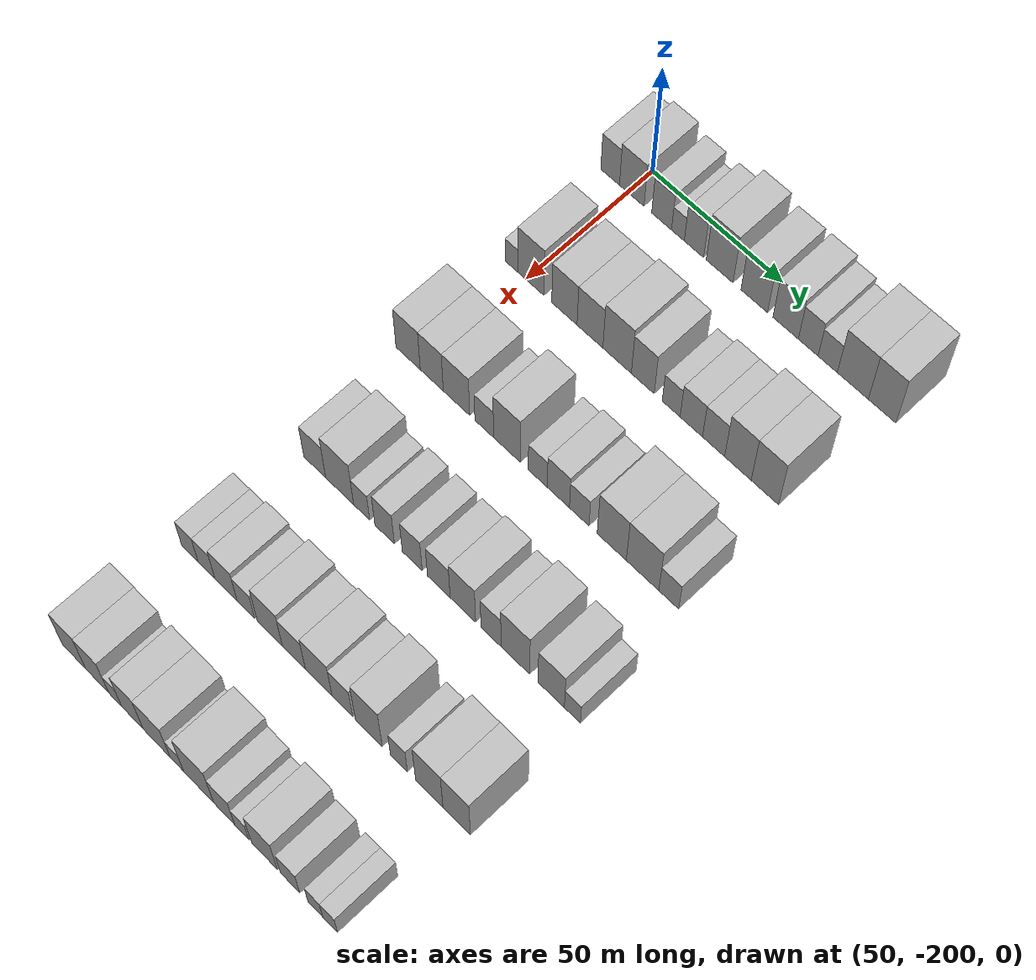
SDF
<sdf version="1.6">
 <world name="default">
  <model name="building_41">
   <static>1</static>
   <pose>50.0000 -207.1523 0 0.000000 0.000000 0.000000</pose>
   <link name="link">
    <pose>0 0 9.00 0 0 0</pose>
    <collision name="collision"><geometry><box><size>20.0000 7.3665 18.0000</size></box></geometry></collision>
    <visual name="visual">
     <cast_shadows>0</cast_shadows>
     <geometry><box><size>20.0000 7.3665 18.0000</size></box></geometry>
     <material>
      <script>
       <uri>model://HANNAS_wall/materials/scripts</uri>
       <uri>model://HANNAS_wall/materials/textures</uri>
       <name>vrc/HANNAS_wall</name>
      </script>
     </material>
    </visual>
   </link>
  </model>
  <model name="building_42">
   <static>1</static>
   <pose>50.0000 -198.6440 0 0.000000 0.000000 0.000000</pose>
   <link name="link">
    <pose>0 0 10.50 0 0 0</pose>
    <collision name="collision"><geometry><box><size>20.0000 9.6501 21.0000</size></box></geometry></collision>
    <visual name="visual">
     <cast_shadows>0</cast_shadows>
     <geometry><box><size>20.0000 9.6501 21.0000</size></box></geometry>
     <material>
      <script>
       <uri>model://HANNAS_wall/materials/scripts</uri>
       <uri>model://HANNAS_wall/materials/textures</uri>
       <name>vrc/HANNAS_wall</name>
      </script>
     </material>
    </visual>
   </link>
  </model>
  <model name="building_43">
   <static>1</static>
   <pose>50.0000 -186.9753 0 0.000000 0.000000 0.000000</pose>
   <link name="link">
    <pose>0 0 9.00 0 0 0</pose>
    <collision name="collision"><geometry><box><size>20.0000 7.6873 18.0000</size></box></geometry></collision>
    <visual name="visual">
     <cast_shadows>0</cast_shadows>
     <geometry><box><size>20.0000 7.6873 18.0000</size></box></geometry>
     <material>
      <script>
       <uri>model://HANNAS_wall/materials/scripts</uri>
       <uri>model://HANNAS_wall/materials/textures</uri>
       <name>vrc/HANNAS_wall</name>
      </script>
     </material>
    </visual>
   </link>
  </model>
  <model name="building_44">
   <static>1</static>
   <pose>50.0000 -180.6573 0 0.000000 0.000000 0.000000</pose>
   <link name="link">
    <pose>0 0 6.00 0 0 0</pose>
    <collision name="collision"><geometry><box><size>20.0000 4.9486 12.0000</size></box></geometry></collision>
    <visual name="visual">
     <cast_shadows>0</cast_shadows>
     <geometry><box><size>20.0000 4.9486 12.0000</size></box></geometry>
     <material>
      <script>
       <uri>model://HANNAS_wall/materials/scripts</uri>
       <uri>model://HANNAS_wall/materials/textures</uri>
       <name>vrc/HANNAS_wall</name>
      </script>
     </material>
    </visual>
   </link>
  </model>
  <model name="building_45">
   <static>1</static>
   <pose>50.0000 -174.4760 0 0.000000 0.000000 0.000000</pose>
   <link name="link">
    <pose>0 0 9.00 0 0 0</pose>
    <collision name="collision"><geometry><box><size>20.0000 7.4140 18.0000</size></box></geometry></collision>
    <visual name="visual">
     <cast_shadows>0</cast_shadows>
     <geometry><box><size>20.0000 7.4140 18.0000</size></box></geometry>
     <material>
      <script>
       <uri>model://HANNAS_wall/materials/scripts</uri>
       <uri>model://HANNAS_wall/materials/textures</uri>
       <name>vrc/HANNAS_wall</name>
      </script>
     </material>
    </visual>
   </link>
  </model>
  <model name="building_46">
   <static>1</static>
   <pose>50.0000 -164.6649 0 0.000000 0.000000 0.000000</pose>
   <link name="link">
    <pose>0 0 12.00 0 0 0</pose>
    <collision name="collision"><geometry><box><size>20.0000 10.2083 24.0000</size></box></geometry></collision>
    <visual name="visual">
     <cast_shadows>0</cast_shadows>
     <geometry><box><size>20.0000 10.2083 24.0000</size></box></geometry>
     <material>
      <script>
       <uri>model://HANNAS_wall/materials/scripts</uri>
       <uri>model://HANNAS_wall/materials/textures</uri>
       <name>vrc/HANNAS_wall</name>
      </script>
     </material>
    </visual>
   </link>
  </model>
  <model name="building_47">
   <static>1</static>
   <pose>50.0000 -151.5582 0 0.000000 0.000000 0.000000</pose>
   <link name="link">
    <pose>0 0 10.50 0 0 0</pose>
    <collision name="collision"><geometry><box><size>20.0000 10.0052 21.0000</size></box></geometry></collision>
    <visual name="visual">
     <cast_shadows>0</cast_shadows>
     <geometry><box><size>20.0000 10.0052 21.0000</size></box></geometry>
     <material>
      <script>
       <uri>model://HANNAS_wall/materials/scripts</uri>
       <uri>model://HANNAS_wall/materials/textures</uri>
       <name>vrc/HANNAS_wall</name>
      </script>
     </material>
    </visual>
   </link>
  </model>
  <model name="building_48">
   <static>1</static>
   <pose>50.0000 -139.8257 0 0.000000 0.000000 0.000000</pose>
   <link name="link">
    <pose>0 0 10.50 0 0 0</pose>
    <collision name="collision"><geometry><box><size>20.0000 9.4598 21.0000</size></box></geometry></collision>
    <visual name="visual">
     <cast_shadows>0</cast_shadows>
     <geometry><box><size>20.0000 9.4598 21.0000</size></box></geometry>
     <material>
      <script>
       <uri>model://HANNAS_wall/materials/scripts</uri>
       <uri>model://HANNAS_wall/materials/textures</uri>
       <name>vrc/HANNAS_wall</name>
      </script>
     </material>
    </visual>
   </link>
  </model>
  <model name="building_49">
   <static>1</static>
   <pose>50.0000 -131.4566 0 0.000000 0.000000 0.000000</pose>
   <link name="link">
    <pose>0 0 9.00 0 0 0</pose>
    <collision name="collision"><geometry><box><size>20.0000 7.2784 18.0000</size></box></geometry></collision>
    <visual name="visual">
     <cast_shadows>0</cast_shadows>
     <geometry><box><size>20.0000 7.2784 18.0000</size></box></geometry>
     <material>
      <script>
       <uri>model://HANNAS_wall/materials/scripts</uri>
       <uri>model://HANNAS_wall/materials/textures</uri>
       <name>vrc/HANNAS_wall</name>
      </script>
     </material>
    </visual>
   </link>
  </model>
  <model name="building_50">
   <static>1</static>
   <pose>50.0000 -124.2976 0 0.000000 0.000000 0.000000</pose>
   <link name="link">
    <pose>0 0 7.50 0 0 0</pose>
    <collision name="collision"><geometry><box><size>20.0000 7.0396 15.0000</size></box></geometry></collision>
    <visual name="visual">
     <cast_shadows>0</cast_shadows>
     <geometry><box><size>20.0000 7.0396 15.0000</size></box></geometry>
     <material>
      <script>
       <uri>model://HANNAS_wall/materials/scripts</uri>
       <uri>model://HANNAS_wall/materials/textures</uri>
       <name>vrc/HANNAS_wall</name>
      </script>
     </material>
    </visual>
   </link>
  </model>
  <model name="building_51">
   <static>1</static>
   <pose>50.0000 -115.1420 0 0.000000 0.000000 0.000000</pose>
   <link name="link">
    <pose>0 0 12.00 0 0 0</pose>
    <collision name="collision"><geometry><box><size>20.0000 11.2716 24.0000</size></box></geometry></collision>
    <visual name="visual">
     <cast_shadows>0</cast_shadows>
     <geometry><box><size>20.0000 11.2716 24.0000</size></box></geometry>
     <material>
      <script>
       <uri>model://HANNAS_wall/materials/scripts</uri>
       <uri>model://HANNAS_wall/materials/textures</uri>
       <name>vrc/HANNAS_wall</name>
      </script>
     </material>
    </visual>
   </link>
  </model>
  <model name="building_52">
   <static>1</static>
   <pose>50.0000 -104.5410 0 0.000000 0.000000 0.000000</pose>
   <link name="link">
    <pose>0 0 12.00 0 0 0</pose>
    <collision name="collision"><geometry><box><size>20.0000 9.9304 24.0000</size></box></geometry></collision>
    <visual name="visual">
     <cast_shadows>0</cast_shadows>
     <geometry><box><size>20.0000 9.9304 24.0000</size></box></geometry>
     <material>
      <script>
       <uri>model://HANNAS_wall/materials/scripts</uri>
       <uri>model://HANNAS_wall/materials/textures</uri>
       <name>vrc/HANNAS_wall</name>
      </script>
     </material>
    </visual>
   </link>
  </model>
  <model name="building_180">
   <static>1</static>
   <pose>90.0000 -205.7864 0 0.000000 0.000000 0.000000</pose>
   <link name="link">
    <pose>0 0 6.00 0 0 0</pose>
    <collision name="collision"><geometry><box><size>20.0000 4.9115 12.0000</size></box></geometry></collision>
    <visual name="visual">
     <cast_shadows>0</cast_shadows>
     <geometry><box><size>20.0000 4.9115 12.0000</size></box></geometry>
     <material>
      <script>
       <uri>model://HANNAS_wall/materials/scripts</uri>
       <uri>model://HANNAS_wall/materials/textures</uri>
       <name>vrc/HANNAS_wall</name>
      </script>
     </material>
    </visual>
   </link>
  </model>
  <model name="building_181">
   <static>1</static>
   <pose>90.0000 -198.1555 0 0.000000 0.000000 0.000000</pose>
   <link name="link">
    <pose>0 0 12.00 0 0 0</pose>
    <collision name="collision"><geometry><box><size>20.0000 10.3504 24.0000</size></box></geometry></collision>
    <visual name="visual">
     <cast_shadows>0</cast_shadows>
     <geometry><box><size>20.0000 10.3504 24.0000</size></box></geometry>
     <material>
      <script>
       <uri>model://HANNAS_wall/materials/scripts</uri>
       <uri>model://HANNAS_wall/materials/textures</uri>
       <name>vrc/HANNAS_wall</name>
      </script>
     </material>
    </visual>
   </link>
  </model>
  <model name="building_182">
   <static>1</static>
   <pose>90.0000 -185.0702 0 0.000000 0.000000 0.000000</pose>
   <link name="link">
    <pose>0 0 10.50 0 0 0</pose>
    <collision name="collision"><geometry><box><size>20.0000 9.8203 21.0000</size></box></geometry></collision>
    <visual name="visual">
     <cast_shadows>0</cast_shadows>
     <geometry><box><size>20.0000 9.8203 21.0000</size></box></geometry>
     <material>
      <script>
       <uri>model://HANNAS_wall/materials/scripts</uri>
       <uri>model://HANNAS_wall/materials/textures</uri>
       <name>vrc/HANNAS_wall</name>
      </script>
     </material>
    </visual>
   </link>
  </model>
  <model name="building_183">
   <static>1</static>
   <pose>90.0000 -175.1920 0 0.000000 0.000000 0.000000</pose>
   <link name="link">
    <pose>0 0 10.50 0 0 0</pose>
    <collision name="collision"><geometry><box><size>20.0000 9.9362 21.0000</size></box></geometry></collision>
    <visual name="visual">
     <cast_shadows>0</cast_shadows>
     <geometry><box><size>20.0000 9.9362 21.0000</size></box></geometry>
     <material>
      <script>
       <uri>model://HANNAS_wall/materials/scripts</uri>
       <uri>model://HANNAS_wall/materials/textures</uri>
       <name>vrc/HANNAS_wall</name>
      </script>
     </material>
    </visual>
   </link>
  </model>
  <model name="building_184">
   <static>1</static>
   <pose>90.0000 -164.8125 0 0.000000 0.000000 0.000000</pose>
   <link name="link">
    <pose>0 0 12.00 0 0 0</pose>
    <collision name="collision"><geometry><box><size>20.0000 10.8228 24.0000</size></box></geometry></collision>
    <visual name="visual">
     <cast_shadows>0</cast_shadows>
     <geometry><box><size>20.0000 10.8228 24.0000</size></box></geometry>
     <material>
      <script>
       <uri>model://HANNAS_wall/materials/scripts</uri>
       <uri>model://HANNAS_wall/materials/textures</uri>
       <name>vrc/HANNAS_wall</name>
      </script>
     </material>
    </visual>
   </link>
  </model>
  <model name="building_185">
   <static>1</static>
   <pose>90.0000 -155.0852 0 0.000000 0.000000 0.000000</pose>
   <link name="link">
    <pose>0 0 10.50 0 0 0</pose>
    <collision name="collision"><geometry><box><size>20.0000 8.6317 21.0000</size></box></geometry></collision>
    <visual name="visual">
     <cast_shadows>0</cast_shadows>
     <geometry><box><size>20.0000 8.6317 21.0000</size></box></geometry>
     <material>
      <script>
       <uri>model://HANNAS_wall/materials/scripts</uri>
       <uri>model://HANNAS_wall/materials/textures</uri>
       <name>vrc/HANNAS_wall</name>
      </script>
     </material>
    </visual>
   </link>
  </model>
  <model name="building_186">
   <static>1</static>
   <pose>90.0000 -144.4354 0 0.000000 0.000000 0.000000</pose>
   <link name="link">
    <pose>0 0 7.50 0 0 0</pose>
    <collision name="collision"><geometry><box><size>20.0000 6.6678 15.0000</size></box></geometry></collision>
    <visual name="visual">
     <cast_shadows>0</cast_shadows>
     <geometry><box><size>20.0000 6.6678 15.0000</size></box></geometry>
     <material>
      <script>
       <uri>model://HANNAS_wall/materials/scripts</uri>
       <uri>model://HANNAS_wall/materials/textures</uri>
       <name>vrc/HANNAS_wall</name>
      </script>
     </material>
    </visual>
   </link>
  </model>
  <model name="building_187">
   <static>1</static>
   <pose>90.0000 -136.9555 0 0.000000 0.000000 0.000000</pose>
   <link name="link">
    <pose>0 0 9.00 0 0 0</pose>
    <collision name="collision"><geometry><box><size>20.0000 8.2921 18.0000</size></box></geometry></collision>
    <visual name="visual">
     <cast_shadows>0</cast_shadows>
     <geometry><box><size>20.0000 8.2921 18.0000</size></box></geometry>
     <material>
      <script>
       <uri>model://HANNAS_wall/materials/scripts</uri>
       <uri>model://HANNAS_wall/materials/textures</uri>
       <name>vrc/HANNAS_wall</name>
      </script>
     </material>
    </visual>
   </link>
  </model>
  <model name="building_188">
   <static>1</static>
   <pose>90.0000 -128.7260 0 0.000000 0.000000 0.000000</pose>
   <link name="link">
    <pose>0 0 9.00 0 0 0</pose>
    <collision name="collision"><geometry><box><size>20.0000 8.1670 18.0000</size></box></geometry></collision>
    <visual name="visual">
     <cast_shadows>0</cast_shadows>
     <geometry><box><size>20.0000 8.1670 18.0000</size></box></geometry>
     <material>
      <script>
       <uri>model://HANNAS_wall/materials/scripts</uri>
       <uri>model://HANNAS_wall/materials/textures</uri>
       <name>vrc/HANNAS_wall</name>
      </script>
     </material>
    </visual>
   </link>
  </model>
  <model name="building_189">
   <static>1</static>
   <pose>90.0000 -119.7981 0 0.000000 0.000000 0.000000</pose>
   <link name="link">
    <pose>0 0 12.00 0 0 0</pose>
    <collision name="collision"><geometry><box><size>20.0000 9.6888 24.0000</size></box></geometry></collision>
    <visual name="visual">
     <cast_shadows>0</cast_shadows>
     <geometry><box><size>20.0000 9.6888 24.0000</size></box></geometry>
     <material>
      <script>
       <uri>model://HANNAS_wall/materials/scripts</uri>
       <uri>model://HANNAS_wall/materials/textures</uri>
       <name>vrc/HANNAS_wall</name>
      </script>
     </material>
    </visual>
   </link>
  </model>
  <model name="building_190">
   <static>1</static>
   <pose>90.0000 -109.9983 0 0.000000 0.000000 0.000000</pose>
   <link name="link">
    <pose>0 0 12.00 0 0 0</pose>
    <collision name="collision"><geometry><box><size>20.0000 9.9108 24.0000</size></box></geometry></collision>
    <visual name="visual">
     <cast_shadows>0</cast_shadows>
     <geometry><box><size>20.0000 9.9108 24.0000</size></box></geometry>
     <material>
      <script>
       <uri>model://HANNAS_wall/materials/scripts</uri>
       <uri>model://HANNAS_wall/materials/textures</uri>
       <name>vrc/HANNAS_wall</name>
      </script>
     </material>
    </visual>
   </link>
  </model>
  <model name="building_320">
   <static>1</static>
   <pose>130.0000 -204.7680 0 0.000000 0.000000 0.000000</pose>
   <link name="link">
    <pose>0 0 10.50 0 0 0</pose>
    <collision name="collision"><geometry><box><size>20.0000 9.5874 21.0000</size></box></geometry></collision>
    <visual name="visual">
     <cast_shadows>0</cast_shadows>
     <geometry><box><size>20.0000 9.5874 21.0000</size></box></geometry>
     <material>
      <script>
       <uri>model://HANNAS_wall/materials/scripts</uri>
       <uri>model://HANNAS_wall/materials/textures</uri>
       <name>vrc/HANNAS_wall</name>
      </script>
     </material>
    </visual>
   </link>
  </model>
  <model name="building_321">
   <static>1</static>
   <pose>130.0000 -195.4577 0 0.000000 0.000000 0.000000</pose>
   <link name="link">
    <pose>0 0 10.50 0 0 0</pose>
    <collision name="collision"><geometry><box><size>20.0000 9.0330 21.0000</size></box></geometry></collision>
    <visual name="visual">
     <cast_shadows>0</cast_shadows>
     <geometry><box><size>20.0000 9.0330 21.0000</size></box></geometry>
     <material>
      <script>
       <uri>model://HANNAS_wall/materials/scripts</uri>
       <uri>model://HANNAS_wall/materials/textures</uri>
       <name>vrc/HANNAS_wall</name>
      </script>
     </material>
    </visual>
   </link>
  </model>
  <model name="building_322">
   <static>1</static>
   <pose>130.0000 -185.8103 0 0.000000 0.000000 0.000000</pose>
   <link name="link">
    <pose>0 0 10.50 0 0 0</pose>
    <collision name="collision"><geometry><box><size>20.0000 10.2618 21.0000</size></box></geometry></collision>
    <visual name="visual">
     <cast_shadows>0</cast_shadows>
     <geometry><box><size>20.0000 10.2618 21.0000</size></box></geometry>
     <material>
      <script>
       <uri>model://HANNAS_wall/materials/scripts</uri>
       <uri>model://HANNAS_wall/materials/textures</uri>
       <name>vrc/HANNAS_wall</name>
      </script>
     </material>
    </visual>
   </link>
  </model>
  <model name="building_323">
   <static>1</static>
   <pose>130.0000 -175.0802 0 0.000000 0.000000 0.000000</pose>
   <link name="link">
    <pose>0 0 7.50 0 0 0</pose>
    <collision name="collision"><geometry><box><size>20.0000 7.1983 15.0000</size></box></geometry></collision>
    <visual name="visual">
     <cast_shadows>0</cast_shadows>
     <geometry><box><size>20.0000 7.1983 15.0000</size></box></geometry>
     <material>
      <script>
       <uri>model://HANNAS_wall/materials/scripts</uri>
       <uri>model://HANNAS_wall/materials/textures</uri>
       <name>vrc/HANNAS_wall</name>
      </script>
     </material>
    </visual>
   </link>
  </model>
  <model name="building_324">
   <static>1</static>
   <pose>130.0000 -166.3849 0 0.000000 0.000000 0.000000</pose>
   <link name="link">
    <pose>0 0 12.00 0 0 0</pose>
    <collision name="collision"><geometry><box><size>20.0000 10.1923 24.0000</size></box></geometry></collision>
    <visual name="visual">
     <cast_shadows>0</cast_shadows>
     <geometry><box><size>20.0000 10.1923 24.0000</size></box></geometry>
     <material>
      <script>
       <uri>model://HANNAS_wall/materials/scripts</uri>
       <uri>model://HANNAS_wall/materials/textures</uri>
       <name>vrc/HANNAS_wall</name>
      </script>
     </material>
    </visual>
   </link>
  </model>
  <model name="building_325">
   <static>1</static>
   <pose>130.0000 -154.7256 0 0.000000 0.000000 0.000000</pose>
   <link name="link">
    <pose>0 0 7.50 0 0 0</pose>
    <collision name="collision"><geometry><box><size>20.0000 7.1263 15.0000</size></box></geometry></collision>
    <visual name="visual">
     <cast_shadows>0</cast_shadows>
     <geometry><box><size>20.0000 7.1263 15.0000</size></box></geometry>
     <material>
      <script>
       <uri>model://HANNAS_wall/materials/scripts</uri>
       <uri>model://HANNAS_wall/materials/textures</uri>
       <name>vrc/HANNAS_wall</name>
      </script>
     </material>
    </visual>
   </link>
  </model>
  <model name="building_326">
   <static>1</static>
   <pose>130.0000 -146.9916 0 0.000000 0.000000 0.000000</pose>
   <link name="link">
    <pose>0 0 9.00 0 0 0</pose>
    <collision name="collision"><geometry><box><size>20.0000 8.3417 18.0000</size></box></geometry></collision>
    <visual name="visual">
     <cast_shadows>0</cast_shadows>
     <geometry><box><size>20.0000 8.3417 18.0000</size></box></geometry>
     <material>
      <script>
       <uri>model://HANNAS_wall/materials/scripts</uri>
       <uri>model://HANNAS_wall/materials/textures</uri>
       <name>vrc/HANNAS_wall</name>
      </script>
     </material>
    </visual>
   </link>
  </model>
  <model name="building_327">
   <static>1</static>
   <pose>130.0000 -139.1805 0 0.000000 0.000000 0.000000</pose>
   <link name="link">
    <pose>0 0 7.50 0 0 0</pose>
    <collision name="collision"><geometry><box><size>20.0000 7.2805 15.0000</size></box></geometry></collision>
    <visual name="visual">
     <cast_shadows>0</cast_shadows>
     <geometry><box><size>20.0000 7.2805 15.0000</size></box></geometry>
     <material>
      <script>
       <uri>model://HANNAS_wall/materials/scripts</uri>
       <uri>model://HANNAS_wall/materials/textures</uri>
       <name>vrc/HANNAS_wall</name>
      </script>
     </material>
    </visual>
   </link>
  </model>
  <model name="building_328">
   <static>1</static>
   <pose>130.0000 -127.1952 0 0.000000 0.000000 0.000000</pose>
   <link name="link">
    <pose>0 0 12.00 0 0 0</pose>
    <collision name="collision"><geometry><box><size>20.0000 10.6899 24.0000</size></box></geometry></collision>
    <visual name="visual">
     <cast_shadows>0</cast_shadows>
     <geometry><box><size>20.0000 10.6899 24.0000</size></box></geometry>
     <material>
      <script>
       <uri>model://HANNAS_wall/materials/scripts</uri>
       <uri>model://HANNAS_wall/materials/textures</uri>
       <name>vrc/HANNAS_wall</name>
      </script>
     </material>
    </visual>
   </link>
  </model>
  <model name="building_329">
   <static>1</static>
   <pose>130.0000 -115.9473 0 0.000000 0.000000 0.000000</pose>
   <link name="link">
    <pose>0 0 12.00 0 0 0</pose>
    <collision name="collision"><geometry><box><size>20.0000 11.8061 24.0000</size></box></geometry></collision>
    <visual name="visual">
     <cast_shadows>0</cast_shadows>
     <geometry><box><size>20.0000 11.8061 24.0000</size></box></geometry>
     <material>
      <script>
       <uri>model://HANNAS_wall/materials/scripts</uri>
       <uri>model://HANNAS_wall/materials/textures</uri>
       <name>vrc/HANNAS_wall</name>
      </script>
     </material>
    </visual>
   </link>
  </model>
  <model name="building_330">
   <static>1</static>
   <pose>130.0000 -106.4598 0 0.000000 0.000000 0.000000</pose>
   <link name="link">
    <pose>0 0 7.50 0 0 0</pose>
    <collision name="collision"><geometry><box><size>20.0000 7.1688 15.0000</size></box></geometry></collision>
    <visual name="visual">
     <cast_shadows>0</cast_shadows>
     <geometry><box><size>20.0000 7.1688 15.0000</size></box></geometry>
     <material>
      <script>
       <uri>model://HANNAS_wall/materials/scripts</uri>
       <uri>model://HANNAS_wall/materials/textures</uri>
       <name>vrc/HANNAS_wall</name>
      </script>
     </material>
    </visual>
   </link>
  </model>
  <model name="building_462">
   <static>1</static>
   <pose>170.0000 -198.2457 0 0.000000 0.000000 0.000000</pose>
   <link name="link">
    <pose>0 0 9.00 0 0 0</pose>
    <collision name="collision"><geometry><box><size>20.0000 8.5757 18.0000</size></box></geometry></collision>
    <visual name="visual">
     <cast_shadows>0</cast_shadows>
     <geometry><box><size>20.0000 8.5757 18.0000</size></box></geometry>
     <material>
      <script>
       <uri>model://HANNAS_wall/materials/scripts</uri>
       <uri>model://HANNAS_wall/materials/textures</uri>
       <name>vrc/HANNAS_wall</name>
      </script>
     </material>
    </visual>
   </link>
  </model>
  <model name="building_463">
   <static>1</static>
   <pose>170.0000 -188.4975 0 0.000000 0.000000 0.000000</pose>
   <link name="link">
    <pose>0 0 12.00 0 0 0</pose>
    <collision name="collision"><geometry><box><size>20.0000 10.9205 24.0000</size></box></geometry></collision>
    <visual name="visual">
     <cast_shadows>0</cast_shadows>
     <geometry><box><size>20.0000 10.9205 24.0000</size></box></geometry>
     <material>
      <script>
       <uri>model://HANNAS_wall/materials/scripts</uri>
       <uri>model://HANNAS_wall/materials/textures</uri>
       <name>vrc/HANNAS_wall</name>
      </script>
     </material>
    </visual>
   </link>
  </model>
  <model name="building_464">
   <static>1</static>
   <pose>170.0000 -179.9260 0 0.000000 0.000000 0.000000</pose>
   <link name="link">
    <pose>0 0 7.50 0 0 0</pose>
    <collision name="collision"><geometry><box><size>20.0000 6.2226 15.0000</size></box></geometry></collision>
    <visual name="visual">
     <cast_shadows>0</cast_shadows>
     <geometry><box><size>20.0000 6.2226 15.0000</size></box></geometry>
     <material>
      <script>
       <uri>model://HANNAS_wall/materials/scripts</uri>
       <uri>model://HANNAS_wall/materials/textures</uri>
       <name>vrc/HANNAS_wall</name>
      </script>
     </material>
    </visual>
   </link>
  </model>
  <model name="building_465">
   <static>1</static>
   <pose>170.0000 -171.0726 0 0.000000 0.000000 0.000000</pose>
   <link name="link">
    <pose>0 0 9.00 0 0 0</pose>
    <collision name="collision"><geometry><box><size>20.0000 7.4843 18.0000</size></box></geometry></collision>
    <visual name="visual">
     <cast_shadows>0</cast_shadows>
     <geometry><box><size>20.0000 7.4843 18.0000</size></box></geometry>
     <material>
      <script>
       <uri>model://HANNAS_wall/materials/scripts</uri>
       <uri>model://HANNAS_wall/materials/textures</uri>
       <name>vrc/HANNAS_wall</name>
      </script>
     </material>
    </visual>
   </link>
  </model>
  <model name="building_466">
   <static>1</static>
   <pose>170.0000 -160.5545 0 0.000000 0.000000 0.000000</pose>
   <link name="link">
    <pose>0 0 9.00 0 0 0</pose>
    <collision name="collision"><geometry><box><size>20.0000 7.5518 18.0000</size></box></geometry></collision>
    <visual name="visual">
     <cast_shadows>0</cast_shadows>
     <geometry><box><size>20.0000 7.5518 18.0000</size></box></geometry>
     <material>
      <script>
       <uri>model://HANNAS_wall/materials/scripts</uri>
       <uri>model://HANNAS_wall/materials/textures</uri>
       <name>vrc/HANNAS_wall</name>
      </script>
     </material>
    </visual>
   </link>
  </model>
  <model name="building_467">
   <static>1</static>
   <pose>170.0000 -150.5188 0 0.000000 0.000000 0.000000</pose>
   <link name="link">
    <pose>0 0 9.00 0 0 0</pose>
    <collision name="collision"><geometry><box><size>20.0000 8.5197 18.0000</size></box></geometry></collision>
    <visual name="visual">
     <cast_shadows>0</cast_shadows>
     <geometry><box><size>20.0000 8.5197 18.0000</size></box></geometry>
     <material>
      <script>
       <uri>model://HANNAS_wall/materials/scripts</uri>
       <uri>model://HANNAS_wall/materials/textures</uri>
       <name>vrc/HANNAS_wall</name>
      </script>
     </material>
    </visual>
   </link>
  </model>
  <model name="building_468">
   <static>1</static>
   <pose>170.0000 -141.5092 0 0.000000 0.000000 0.000000</pose>
   <link name="link">
    <pose>0 0 10.50 0 0 0</pose>
    <collision name="collision"><geometry><box><size>20.0000 9.4995 21.0000</size></box></geometry></collision>
    <visual name="visual">
     <cast_shadows>0</cast_shadows>
     <geometry><box><size>20.0000 9.4995 21.0000</size></box></geometry>
     <material>
      <script>
       <uri>model://HANNAS_wall/materials/scripts</uri>
       <uri>model://HANNAS_wall/materials/textures</uri>
       <name>vrc/HANNAS_wall</name>
      </script>
     </material>
    </visual>
   </link>
  </model>
  <model name="building_469">
   <static>1</static>
   <pose>170.0000 -131.0581 0 0.000000 0.000000 0.000000</pose>
   <link name="link">
    <pose>0 0 9.00 0 0 0</pose>
    <collision name="collision"><geometry><box><size>20.0000 7.4027 18.0000</size></box></geometry></collision>
    <visual name="visual">
     <cast_shadows>0</cast_shadows>
     <geometry><box><size>20.0000 7.4027 18.0000</size></box></geometry>
     <material>
      <script>
       <uri>model://HANNAS_wall/materials/scripts</uri>
       <uri>model://HANNAS_wall/materials/textures</uri>
       <name>vrc/HANNAS_wall</name>
      </script>
     </material>
    </visual>
   </link>
  </model>
  <model name="building_470">
   <static>1</static>
   <pose>170.0000 -122.1275 0 0.000000 0.000000 0.000000</pose>
   <link name="link">
    <pose>0 0 12.00 0 0 0</pose>
    <collision name="collision"><geometry><box><size>20.0000 10.4585 24.0000</size></box></geometry></collision>
    <visual name="visual">
     <cast_shadows>0</cast_shadows>
     <geometry><box><size>20.0000 10.4585 24.0000</size></box></geometry>
     <material>
      <script>
       <uri>model://HANNAS_wall/materials/scripts</uri>
       <uri>model://HANNAS_wall/materials/textures</uri>
       <name>vrc/HANNAS_wall</name>
      </script>
     </material>
    </visual>
   </link>
  </model>
  <model name="building_471">
   <static>1</static>
   <pose>170.0000 -109.1432 0 0.000000 0.000000 0.000000</pose>
   <link name="link">
    <pose>0 0 10.50 0 0 0</pose>
    <collision name="collision"><geometry><box><size>20.0000 9.5102 21.0000</size></box></geometry></collision>
    <visual name="visual">
     <cast_shadows>0</cast_shadows>
     <geometry><box><size>20.0000 9.5102 21.0000</size></box></geometry>
     <material>
      <script>
       <uri>model://HANNAS_wall/materials/scripts</uri>
       <uri>model://HANNAS_wall/materials/textures</uri>
       <name>vrc/HANNAS_wall</name>
      </script>
     </material>
    </visual>
   </link>
  </model>
  <model name="building_472">
   <static>1</static>
   <pose>170.0000 -101.5110 0 0.000000 0.000000 0.000000</pose>
   <link name="link">
    <pose>0 0 6.00 0 0 0</pose>
    <collision name="collision"><geometry><box><size>20.0000 5.7543 12.0000</size></box></geometry></collision>
    <visual name="visual">
     <cast_shadows>0</cast_shadows>
     <geometry><box><size>20.0000 5.7543 12.0000</size></box></geometry>
     <material>
      <script>
       <uri>model://HANNAS_wall/materials/scripts</uri>
       <uri>model://HANNAS_wall/materials/textures</uri>
       <name>vrc/HANNAS_wall</name>
      </script>
     </material>
    </visual>
   </link>
  </model>
  <model name="building_600">
   <static>1</static>
   <pose>210.0000 -202.5215 0 0.000000 0.000000 0.000000</pose>
   <link name="link">
    <pose>0 0 7.50 0 0 0</pose>
    <collision name="collision"><geometry><box><size>20.0000 6.5059 15.0000</size></box></geometry></collision>
    <visual name="visual">
     <cast_shadows>0</cast_shadows>
     <geometry><box><size>20.0000 6.5059 15.0000</size></box></geometry>
     <material>
      <script>
       <uri>model://HANNAS_wall/materials/scripts</uri>
       <uri>model://HANNAS_wall/materials/textures</uri>
       <name>vrc/HANNAS_wall</name>
      </script>
     </material>
    </visual>
   </link>
  </model>
  <model name="building_601">
   <static>1</static>
   <pose>210.0000 -195.9596 0 0.000000 0.000000 0.000000</pose>
   <link name="link">
    <pose>0 0 7.50 0 0 0</pose>
    <collision name="collision"><geometry><box><size>20.0000 6.6178 15.0000</size></box></geometry></collision>
    <visual name="visual">
     <cast_shadows>0</cast_shadows>
     <geometry><box><size>20.0000 6.6178 15.0000</size></box></geometry>
     <material>
      <script>
       <uri>model://HANNAS_wall/materials/scripts</uri>
       <uri>model://HANNAS_wall/materials/textures</uri>
       <name>vrc/HANNAS_wall</name>
      </script>
     </material>
    </visual>
   </link>
  </model>
  <model name="building_602">
   <static>1</static>
   <pose>210.0000 -188.3005 0 0.000000 0.000000 0.000000</pose>
   <link name="link">
    <pose>0 0 9.00 0 0 0</pose>
    <collision name="collision"><geometry><box><size>20.0000 8.7005 18.0000</size></box></geometry></collision>
    <visual name="visual">
     <cast_shadows>0</cast_shadows>
     <geometry><box><size>20.0000 8.7005 18.0000</size></box></geometry>
     <material>
      <script>
       <uri>model://HANNAS_wall/materials/scripts</uri>
       <uri>model://HANNAS_wall/materials/textures</uri>
       <name>vrc/HANNAS_wall</name>
      </script>
     </material>
    </visual>
   </link>
  </model>
  <model name="building_603">
   <static>1</static>
   <pose>210.0000 -180.5241 0 0.000000 0.000000 0.000000</pose>
   <link name="link">
    <pose>0 0 7.50 0 0 0</pose>
    <collision name="collision"><geometry><box><size>20.0000 6.8523 15.0000</size></box></geometry></collision>
    <visual name="visual">
     <cast_shadows>0</cast_shadows>
     <geometry><box><size>20.0000 6.8523 15.0000</size></box></geometry>
     <material>
      <script>
       <uri>model://HANNAS_wall/materials/scripts</uri>
       <uri>model://HANNAS_wall/materials/textures</uri>
       <name>vrc/HANNAS_wall</name>
      </script>
     </material>
    </visual>
   </link>
  </model>
  <model name="building_604">
   <static>1</static>
   <pose>210.0000 -171.2434 0 0.000000 0.000000 0.000000</pose>
   <link name="link">
    <pose>0 0 10.50 0 0 0</pose>
    <collision name="collision"><geometry><box><size>20.0000 9.7091 21.0000</size></box></geometry></collision>
    <visual name="visual">
     <cast_shadows>0</cast_shadows>
     <geometry><box><size>20.0000 9.7091 21.0000</size></box></geometry>
     <material>
      <script>
       <uri>model://HANNAS_wall/materials/scripts</uri>
       <uri>model://HANNAS_wall/materials/textures</uri>
       <name>vrc/HANNAS_wall</name>
      </script>
     </material>
    </visual>
   </link>
  </model>
  <model name="building_605">
   <static>1</static>
   <pose>210.0000 -162.0179 0 0.000000 0.000000 0.000000</pose>
   <link name="link">
    <pose>0 0 9.00 0 0 0</pose>
    <collision name="collision"><geometry><box><size>20.0000 8.7420 18.0000</size></box></geometry></collision>
    <visual name="visual">
     <cast_shadows>0</cast_shadows>
     <geometry><box><size>20.0000 8.7420 18.0000</size></box></geometry>
     <material>
      <script>
       <uri>model://HANNAS_wall/materials/scripts</uri>
       <uri>model://HANNAS_wall/materials/textures</uri>
       <name>vrc/HANNAS_wall</name>
      </script>
     </material>
    </visual>
   </link>
  </model>
  <model name="building_606">
   <static>1</static>
   <pose>210.0000 -152.6227 0 0.000000 0.000000 0.000000</pose>
   <link name="link">
    <pose>0 0 10.50 0 0 0</pose>
    <collision name="collision"><geometry><box><size>20.0000 10.0482 21.0000</size></box></geometry></collision>
    <visual name="visual">
     <cast_shadows>0</cast_shadows>
     <geometry><box><size>20.0000 10.0482 21.0000</size></box></geometry>
     <material>
      <script>
       <uri>model://HANNAS_wall/materials/scripts</uri>
       <uri>model://HANNAS_wall/materials/textures</uri>
       <name>vrc/HANNAS_wall</name>
      </script>
     </material>
    </visual>
   </link>
  </model>
  <model name="building_607">
   <static>1</static>
   <pose>210.0000 -143.7461 0 0.000000 0.000000 0.000000</pose>
   <link name="link">
    <pose>0 0 9.00 0 0 0</pose>
    <collision name="collision"><geometry><box><size>20.0000 7.7050 18.0000</size></box></geometry></collision>
    <visual name="visual">
     <cast_shadows>0</cast_shadows>
     <geometry><box><size>20.0000 7.7050 18.0000</size></box></geometry>
     <material>
      <script>
       <uri>model://HANNAS_wall/materials/scripts</uri>
       <uri>model://HANNAS_wall/materials/textures</uri>
       <name>vrc/HANNAS_wall</name>
      </script>
     </material>
    </visual>
   </link>
  </model>
  <model name="building_608">
   <static>1</static>
   <pose>210.0000 -133.9032 0 0.000000 0.000000 0.000000</pose>
   <link name="link">
    <pose>0 0 12.00 0 0 0</pose>
    <collision name="collision"><geometry><box><size>20.0000 9.9808 24.0000</size></box></geometry></collision>
    <visual name="visual">
     <cast_shadows>0</cast_shadows>
     <geometry><box><size>20.0000 9.9808 24.0000</size></box></geometry>
     <material>
      <script>
       <uri>model://HANNAS_wall/materials/scripts</uri>
       <uri>model://HANNAS_wall/materials/textures</uri>
       <name>vrc/HANNAS_wall</name>
      </script>
     </material>
    </visual>
   </link>
  </model>
  <model name="building_609">
   <static>1</static>
   <pose>210.0000 -122.8103 0 0.000000 0.000000 0.000000</pose>
   <link name="link">
    <pose>0 0 7.50 0 0 0</pose>
    <collision name="collision"><geometry><box><size>20.0000 6.2050 15.0000</size></box></geometry></collision>
    <visual name="visual">
     <cast_shadows>0</cast_shadows>
     <geometry><box><size>20.0000 6.2050 15.0000</size></box></geometry>
     <material>
      <script>
       <uri>model://HANNAS_wall/materials/scripts</uri>
       <uri>model://HANNAS_wall/materials/textures</uri>
       <name>vrc/HANNAS_wall</name>
      </script>
     </material>
    </visual>
   </link>
  </model>
  <model name="building_610">
   <static>1</static>
   <pose>210.0000 -111.7659 0 0.000000 0.000000 0.000000</pose>
   <link name="link">
    <pose>0 0 12.00 0 0 0</pose>
    <collision name="collision"><geometry><box><size>20.0000 9.8838 24.0000</size></box></geometry></collision>
    <visual name="visual">
     <cast_shadows>0</cast_shadows>
     <geometry><box><size>20.0000 9.8838 24.0000</size></box></geometry>
     <material>
      <script>
       <uri>model://HANNAS_wall/materials/scripts</uri>
       <uri>model://HANNAS_wall/materials/textures</uri>
       <name>vrc/HANNAS_wall</name>
      </script>
     </material>
    </visual>
   </link>
  </model>
  <model name="building_611">
   <static>1</static>
   <pose>210.0000 -101.8903 0 0.000000 0.000000 0.000000</pose>
   <link name="link">
    <pose>0 0 12.00 0 0 0</pose>
    <collision name="collision"><geometry><box><size>20.0000 9.8675 24.0000</size></box></geometry></collision>
    <visual name="visual">
     <cast_shadows>0</cast_shadows>
     <geometry><box><size>20.0000 9.8675 24.0000</size></box></geometry>
     <material>
      <script>
       <uri>model://HANNAS_wall/materials/scripts</uri>
       <uri>model://HANNAS_wall/materials/textures</uri>
       <name>vrc/HANNAS_wall</name>
      </script>
     </material>
    </visual>
   </link>
  </model>
  <model name="building_741">
   <static>1</static>
   <pose>250.0000 -201.4314 0 0.000000 0.000000 0.000000</pose>
   <link name="link">
    <pose>0 0 10.50 0 0 0</pose>
    <collision name="collision"><geometry><box><size>20.0000 9.2423 21.0000</size></box></geometry></collision>
    <visual name="visual">
     <cast_shadows>0</cast_shadows>
     <geometry><box><size>20.0000 9.2423 21.0000</size></box></geometry>
     <material>
      <script>
       <uri>model://HANNAS_wall/materials/scripts</uri>
       <uri>model://HANNAS_wall/materials/textures</uri>
       <name>vrc/HANNAS_wall</name>
      </script>
     </material>
    </visual>
   </link>
  </model>
  <model name="building_742">
   <static>1</static>
   <pose>250.0000 -192.2463 0 0.000000 0.000000 0.000000</pose>
   <link name="link">
    <pose>0 0 10.50 0 0 0</pose>
    <collision name="collision"><geometry><box><size>20.0000 9.1280 21.0000</size></box></geometry></collision>
    <visual name="visual">
     <cast_shadows>0</cast_shadows>
     <geometry><box><size>20.0000 9.1280 21.0000</size></box></geometry>
     <material>
      <script>
       <uri>model://HANNAS_wall/materials/scripts</uri>
       <uri>model://HANNAS_wall/materials/textures</uri>
       <name>vrc/HANNAS_wall</name>
      </script>
     </material>
    </visual>
   </link>
  </model>
  <model name="building_743">
   <static>1</static>
   <pose>250.0000 -185.1618 0 0.000000 0.000000 0.000000</pose>
   <link name="link">
    <pose>0 0 6.00 0 0 0</pose>
    <collision name="collision"><geometry><box><size>20.0000 5.0411 12.0000</size></box></geometry></collision>
    <visual name="visual">
     <cast_shadows>0</cast_shadows>
     <geometry><box><size>20.0000 5.0411 12.0000</size></box></geometry>
     <material>
      <script>
       <uri>model://HANNAS_wall/materials/scripts</uri>
       <uri>model://HANNAS_wall/materials/textures</uri>
       <name>vrc/HANNAS_wall</name>
      </script>
     </material>
    </visual>
   </link>
  </model>
  <model name="building_744">
   <static>1</static>
   <pose>250.0000 -178.4315 0 0.000000 0.000000 0.000000</pose>
   <link name="link">
    <pose>0 0 10.50 0 0 0</pose>
    <collision name="collision"><geometry><box><size>20.0000 8.4195 21.0000</size></box></geometry></collision>
    <visual name="visual">
     <cast_shadows>0</cast_shadows>
     <geometry><box><size>20.0000 8.4195 21.0000</size></box></geometry>
     <material>
      <script>
       <uri>model://HANNAS_wall/materials/scripts</uri>
       <uri>model://HANNAS_wall/materials/textures</uri>
       <name>vrc/HANNAS_wall</name>
      </script>
     </material>
    </visual>
   </link>
  </model>
  <model name="building_745">
   <static>1</static>
   <pose>250.0000 -169.0426 0 0.000000 0.000000 0.000000</pose>
   <link name="link">
    <pose>0 0 10.50 0 0 0</pose>
    <collision name="collision"><geometry><box><size>20.0000 10.3583 21.0000</size></box></geometry></collision>
    <visual name="visual">
     <cast_shadows>0</cast_shadows>
     <geometry><box><size>20.0000 10.3583 21.0000</size></box></geometry>
     <material>
      <script>
       <uri>model://HANNAS_wall/materials/scripts</uri>
       <uri>model://HANNAS_wall/materials/textures</uri>
       <name>vrc/HANNAS_wall</name>
      </script>
     </material>
    </visual>
   </link>
  </model>
  <model name="building_746">
   <static>1</static>
   <pose>250.0000 -161.3047 0 0.000000 0.000000 0.000000</pose>
   <link name="link">
    <pose>0 0 6.00 0 0 0</pose>
    <collision name="collision"><geometry><box><size>20.0000 5.1176 12.0000</size></box></geometry></collision>
    <visual name="visual">
     <cast_shadows>0</cast_shadows>
     <geometry><box><size>20.0000 5.1176 12.0000</size></box></geometry>
     <material>
      <script>
       <uri>model://HANNAS_wall/materials/scripts</uri>
       <uri>model://HANNAS_wall/materials/textures</uri>
       <name>vrc/HANNAS_wall</name>
      </script>
     </material>
    </visual>
   </link>
  </model>
  <model name="building_747">
   <static>1</static>
   <pose>250.0000 -152.9935 0 0.000000 0.000000 0.000000</pose>
   <link name="link">
    <pose>0 0 12.00 0 0 0</pose>
    <collision name="collision"><geometry><box><size>20.0000 11.5047 24.0000</size></box></geometry></collision>
    <visual name="visual">
     <cast_shadows>0</cast_shadows>
     <geometry><box><size>20.0000 11.5047 24.0000</size></box></geometry>
     <material>
      <script>
       <uri>model://HANNAS_wall/materials/scripts</uri>
       <uri>model://HANNAS_wall/materials/textures</uri>
       <name>vrc/HANNAS_wall</name>
      </script>
     </material>
    </visual>
   </link>
  </model>
  <model name="building_748">
   <static>1</static>
   <pose>250.0000 -143.3176 0 0.000000 0.000000 0.000000</pose>
   <link name="link">
    <pose>0 0 9.00 0 0 0</pose>
    <collision name="collision"><geometry><box><size>20.0000 7.8470 18.0000</size></box></geometry></collision>
    <visual name="visual">
     <cast_shadows>0</cast_shadows>
     <geometry><box><size>20.0000 7.8470 18.0000</size></box></geometry>
     <material>
      <script>
       <uri>model://HANNAS_wall/materials/scripts</uri>
       <uri>model://HANNAS_wall/materials/textures</uri>
       <name>vrc/HANNAS_wall</name>
      </script>
     </material>
    </visual>
   </link>
  </model>
  <model name="building_749">
   <static>1</static>
   <pose>250.0000 -136.7793 0 0.000000 0.000000 0.000000</pose>
   <link name="link">
    <pose>0 0 6.00 0 0 0</pose>
    <collision name="collision"><geometry><box><size>20.0000 5.2297 12.0000</size></box></geometry></collision>
    <visual name="visual">
     <cast_shadows>0</cast_shadows>
     <geometry><box><size>20.0000 5.2297 12.0000</size></box></geometry>
     <material>
      <script>
       <uri>model://HANNAS_wall/materials/scripts</uri>
       <uri>model://HANNAS_wall/materials/textures</uri>
       <name>vrc/HANNAS_wall</name>
      </script>
     </material>
    </visual>
   </link>
  </model>
  <model name="building_750">
   <static>1</static>
   <pose>250.0000 -128.3908 0 0.000000 0.000000 0.000000</pose>
   <link name="link">
    <pose>0 0 10.50 0 0 0</pose>
    <collision name="collision"><geometry><box><size>20.0000 9.5473 21.0000</size></box></geometry></collision>
    <visual name="visual">
     <cast_shadows>0</cast_shadows>
     <geometry><box><size>20.0000 9.5473 21.0000</size></box></geometry>
     <material>
      <script>
       <uri>model://HANNAS_wall/materials/scripts</uri>
       <uri>model://HANNAS_wall/materials/textures</uri>
       <name>vrc/HANNAS_wall</name>
      </script>
     </material>
    </visual>
   </link>
  </model>
  <model name="building_751">
   <static>1</static>
   <pose>250.0000 -119.0512 0 0.000000 0.000000 0.000000</pose>
   <link name="link">
    <pose>0 0 7.50 0 0 0</pose>
    <collision name="collision"><geometry><box><size>20.0000 7.1320 15.0000</size></box></geometry></collision>
    <visual name="visual">
     <cast_shadows>0</cast_shadows>
     <geometry><box><size>20.0000 7.1320 15.0000</size></box></geometry>
     <material>
      <script>
       <uri>model://HANNAS_wall/materials/scripts</uri>
       <uri>model://HANNAS_wall/materials/textures</uri>
       <name>vrc/HANNAS_wall</name>
      </script>
     </material>
    </visual>
   </link>
  </model>
  <model name="building_752">
   <static>1</static>
   <pose>250.0000 -109.8301 0 0.000000 0.000000 0.000000</pose>
   <link name="link">
    <pose>0 0 6.00 0 0 0</pose>
    <collision name="collision"><geometry><box><size>20.0000 5.3101 12.0000</size></box></geometry></collision>
    <visual name="visual">
     <cast_shadows>0</cast_shadows>
     <geometry><box><size>20.0000 5.3101 12.0000</size></box></geometry>
     <material>
      <script>
       <uri>model://HANNAS_wall/materials/scripts</uri>
       <uri>model://HANNAS_wall/materials/textures</uri>
       <name>vrc/HANNAS_wall</name>
      </script>
     </material>
    </visual>
   </link>
  </model>
  <model name="building_753">
   <static>1</static>
   <pose>250.0000 -104.5107 0 0.000000 0.000000 0.000000</pose>
   <link name="link">
    <pose>0 0 6.00 0 0 0</pose>
    <collision name="collision"><geometry><box><size>20.0000 5.3287 12.0000</size></box></geometry></collision>
    <visual name="visual">
     <cast_shadows>0</cast_shadows>
     <geometry><box><size>20.0000 5.3287 12.0000</size></box></geometry>
     <material>
      <script>
       <uri>model://HANNAS_wall/materials/scripts</uri>
       <uri>model://HANNAS_wall/materials/textures</uri>
       <name>vrc/HANNAS_wall</name>
      </script>
     </material>
    </visual>
   </link>
  </model>
 </world>
</sdf>
